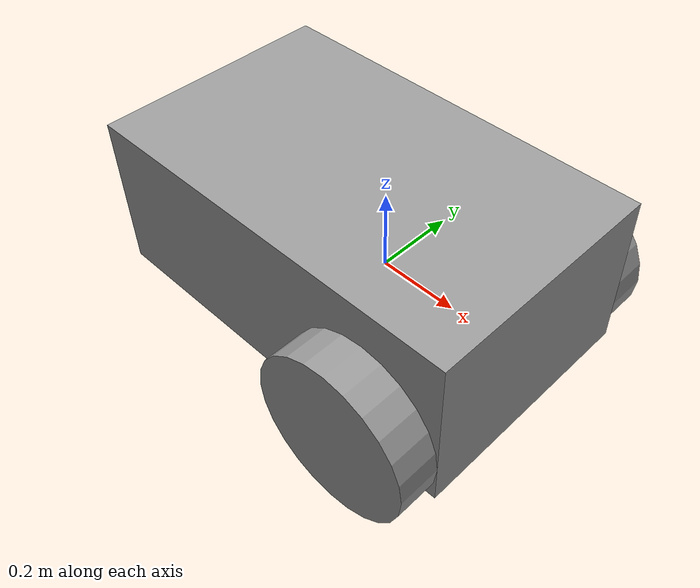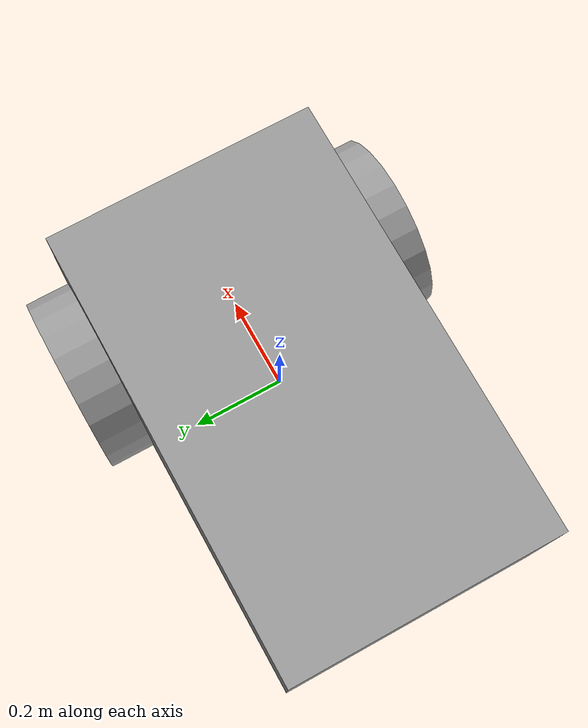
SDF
<?xml version='1.0'?>
<sdf version='1.7'>
  <model name='MobileRobotv2'>
    <link name='link_0'>
      <inertial>
        <mass>282</mass>
        <inertia>
          <ixx>12.22</ixx>
          <ixy>0</ixy>
          <ixz>0</ixz>
          <iyy>27.26</iyy>
          <iyz>0</iyz>
          <izz>31.96</izz>
        </inertia>
        <pose>0 0 0 0 -0 0</pose>
      </inertial>
      <pose>-0.075 0 0.049972 0 -0 0</pose>
      <gravity>1</gravity>
      <self_collide>0</self_collide>
      <kinematic>0</kinematic>
      <enable_wind>0</enable_wind>
      <visual name='visual'>
        <pose>0 0 0 0 -0 0</pose>
        <geometry>
          <box>
            <size>1 0.6 0.4</size>
          </box>
        </geometry>
        <material>
          <lighting>1</lighting>
          <script>
            <uri>file://media/materials/scripts/gazebo.material</uri>
            <name>Gazebo/Grey</name>
          </script>
          <shader type='pixel'>
            <normal_map>__default__</normal_map>
          </shader>
          <ambient>0.3 0.3 0.3 1</ambient>
          <diffuse>0.7 0.7 0.7 1</diffuse>
          <specular>0.01 0.01 0.01 1</specular>
          <emissive>0 0 0 1</emissive>
        </material>
        <transparency>0</transparency>
        <cast_shadows>1</cast_shadows>
      </visual>
      <collision name='collision'>
        <laser_retro>0</laser_retro>
        <max_contacts>10</max_contacts>
        <pose>0 0 0 0 -0 0</pose>
        <geometry>
          <box>
            <size>1 0.6 0.4</size>
          </box>
        </geometry>
        <surface>
          <friction>
            <ode>
              <mu>1</mu>
              <mu2>1</mu2>
              <fdir1>0 0 0</fdir1>
              <slip1>0</slip1>
              <slip2>0</slip2>
            </ode>
            <torsional>
              <coefficient>1</coefficient>
              <patch_radius>0</patch_radius>
              <surface_radius>0</surface_radius>
              <use_patch_radius>1</use_patch_radius>
              <ode>
                <slip>0</slip>
              </ode>
            </torsional>
          </friction>
          <bounce>
            <restitution_coefficient>0</restitution_coefficient>
            <threshold>1e+06</threshold>
          </bounce>
          <contact>
            <collide_without_contact>0</collide_without_contact>
            <collide_without_contact_bitmask>1</collide_without_contact_bitmask>
            <collide_bitmask>1</collide_bitmask>
            <ode>
              <soft_cfm>0</soft_cfm>
              <soft_erp>0.2</soft_erp>
              <kp>1e+13</kp>
              <kd>1</kd>
              <max_vel>0.01</max_vel>
              <min_depth>0</min_depth>
            </ode>
            <bullet>
              <split_impulse>1</split_impulse>
              <split_impulse_penetration_threshold>-0.01</split_impulse_penetration_threshold>
              <soft_cfm>0</soft_cfm>
              <soft_erp>0.2</soft_erp>
              <kp>1e+13</kp>
              <kd>1</kd>
            </bullet>
          </contact>
        </surface>
      </collision>
    </link>
    <link name='link_1'>
      <inertial>
        <mass>14.7655</mass>
        <inertia>
          <ixx>0.159959</ixx>
          <ixy>0</ixy>
          <ixz>0</ixz>
          <iyy>0.159959</iyy>
          <iyz>0</iyz>
          <izz>0.29531</izz>
        </inertia>
        <pose>0 0 0 0 -0 0</pose>
      </inertial>
      <pose>0.225 -0.350019 -0.050028 1.5707 -0 0</pose>
      <gravity>1</gravity>
      <self_collide>0</self_collide>
      <kinematic>0</kinematic>
      <enable_wind>0</enable_wind>
      <visual name='visual'>
        <pose>0 0 0 0 -0 0</pose>
        <geometry>
          <cylinder>
            <radius>0.2</radius>
            <length>0.1</length>
          </cylinder>
        </geometry>
        <material>
          <lighting>1</lighting>
          <script>
            <uri>file://media/materials/scripts/gazebo.material</uri>
            <name>Gazebo/Grey</name>
          </script>
          <shader type='pixel'>
            <normal_map>__default__</normal_map>
          </shader>
          <ambient>0.3 0.3 0.3 1</ambient>
          <diffuse>0.7 0.7 0.7 1</diffuse>
          <specular>0.01 0.01 0.01 1</specular>
          <emissive>0 0 0 1</emissive>
        </material>
        <transparency>0</transparency>
        <cast_shadows>1</cast_shadows>
      </visual>
      <collision name='collision'>
        <laser_retro>0</laser_retro>
        <max_contacts>10</max_contacts>
        <pose>0 0 0 0 -0 0</pose>
        <geometry>
          <cylinder>
            <radius>0.2</radius>
            <length>0.1</length>
          </cylinder>
        </geometry>
        <surface>
          <friction>
            <ode>
              <mu>1</mu>
              <mu2>1</mu2>
              <fdir1>0 0 0</fdir1>
              <slip1>0</slip1>
              <slip2>0</slip2>
            </ode>
            <torsional>
              <coefficient>1</coefficient>
              <patch_radius>0</patch_radius>
              <surface_radius>0</surface_radius>
              <use_patch_radius>1</use_patch_radius>
              <ode>
                <slip>0</slip>
              </ode>
            </torsional>
          </friction>
          <bounce>
            <restitution_coefficient>0</restitution_coefficient>
            <threshold>1e+06</threshold>
          </bounce>
          <contact>
            <collide_without_contact>0</collide_without_contact>
            <collide_without_contact_bitmask>1</collide_without_contact_bitmask>
            <collide_bitmask>1</collide_bitmask>
            <ode>
              <soft_cfm>0</soft_cfm>
              <soft_erp>0.2</soft_erp>
              <kp>1e+13</kp>
              <kd>1</kd>
              <max_vel>0.01</max_vel>
              <min_depth>0</min_depth>
            </ode>
            <bullet>
              <split_impulse>1</split_impulse>
              <split_impulse_penetration_threshold>-0.01</split_impulse_penetration_threshold>
              <soft_cfm>0</soft_cfm>
              <soft_erp>0.2</soft_erp>
              <kp>1e+13</kp>
              <kd>1</kd>
            </bullet>
          </contact>
        </surface>
      </collision>
    </link>
    <link name='link_1_clone'>
      <inertial>
        <mass>14.7655</mass>
        <inertia>
          <ixx>0.159959</ixx>
          <ixy>0</ixy>
          <ixz>0</ixz>
          <iyy>0.159959</iyy>
          <iyz>0</iyz>
          <izz>0.29531</izz>
        </inertia>
        <pose>0 0 0 0 -0 0</pose>
      </inertial>
      <pose>0.225 0.350019 -0.050028 1.5707 -0 0</pose>
      <gravity>1</gravity>
      <self_collide>0</self_collide>
      <kinematic>0</kinematic>
      <enable_wind>0</enable_wind>
      <visual name='visual'>
        <pose>0 0 0 0 -0 0</pose>
        <geometry>
          <cylinder>
            <radius>0.2</radius>
            <length>0.1</length>
          </cylinder>
        </geometry>
        <material>
          <lighting>1</lighting>
          <script>
            <uri>file://media/materials/scripts/gazebo.material</uri>
            <name>Gazebo/Grey</name>
          </script>
          <shader type='pixel'>
            <normal_map>__default__</normal_map>
          </shader>
          <ambient>0.3 0.3 0.3 1</ambient>
          <diffuse>0.7 0.7 0.7 1</diffuse>
          <specular>0.01 0.01 0.01 1</specular>
          <emissive>0 0 0 1</emissive>
        </material>
        <transparency>0</transparency>
        <cast_shadows>1</cast_shadows>
      </visual>
      <collision name='collision'>
        <laser_retro>0</laser_retro>
        <max_contacts>10</max_contacts>
        <pose>0 0 0 0 -0 0</pose>
        <geometry>
          <cylinder>
            <radius>0.2</radius>
            <length>0.1</length>
          </cylinder>
        </geometry>
        <surface>
          <friction>
            <ode>
              <mu>1</mu>
              <mu2>1</mu2>
              <fdir1>0 0 0</fdir1>
              <slip1>0</slip1>
              <slip2>0</slip2>
            </ode>
            <torsional>
              <coefficient>1</coefficient>
              <patch_radius>0</patch_radius>
              <surface_radius>0</surface_radius>
              <use_patch_radius>1</use_patch_radius>
              <ode>
                <slip>0</slip>
              </ode>
            </torsional>
          </friction>
          <bounce>
            <restitution_coefficient>0</restitution_coefficient>
            <threshold>1e+06</threshold>
          </bounce>
          <contact>
            <collide_without_contact>0</collide_without_contact>
            <collide_without_contact_bitmask>1</collide_without_contact_bitmask>
            <collide_bitmask>1</collide_bitmask>
            <ode>
              <soft_cfm>0</soft_cfm>
              <soft_erp>0.2</soft_erp>
              <kp>1e+13</kp>
              <kd>1</kd>
              <max_vel>0.01</max_vel>
              <min_depth>0</min_depth>
            </ode>
            <bullet>
              <split_impulse>1</split_impulse>
              <split_impulse_penetration_threshold>-0.01</split_impulse_penetration_threshold>
              <soft_cfm>0</soft_cfm>
              <soft_erp>0.2</soft_erp>
              <kp>1e+13</kp>
              <kd>1</kd>
            </bullet>
          </contact>
        </surface>
      </collision>
    </link>
    <link name='link_2'>
      <inertial>
        <mass>615.229</mass>
        <inertia>
          <ixx>61.5229</ixx>
          <ixy>0</ixy>
          <ixz>0</ixz>
          <iyy>61.5229</iyy>
          <iyz>0</iyz>
          <izz>61.5229</izz>
        </inertia>
        <pose>0 0 0 0 -0 0</pose>
      </inertial>
      <pose>-0.375 0 -0.050028 0 -0 0</pose>
      <gravity>1</gravity>
      <self_collide>0</self_collide>
      <kinematic>0</kinematic>
      <enable_wind>0</enable_wind>
      <visual name='visual'>
        <pose>0 0 0 0 -0 0</pose>
        <geometry>
          <sphere>
            <radius>0.2</radius>
          </sphere>
        </geometry>
        <material>
          <lighting>1</lighting>
          <script>
            <uri>file://media/materials/scripts/gazebo.material</uri>
            <name>Gazebo/Grey</name>
          </script>
          <shader type='pixel'>
            <normal_map>__default__</normal_map>
          </shader>
          <ambient>0.3 0.3 0.3 1</ambient>
          <diffuse>0.7 0.7 0.7 1</diffuse>
          <specular>0.01 0.01 0.01 1</specular>
          <emissive>0 0 0 1</emissive>
        </material>
        <transparency>0</transparency>
        <cast_shadows>1</cast_shadows>
      </visual>
      <collision name='collision'>
        <laser_retro>0</laser_retro>
        <max_contacts>10</max_contacts>
        <pose>0 0 0 0 -0 0</pose>
        <geometry>
          <sphere>
            <radius>0.2</radius>
          </sphere>
        </geometry>
        <surface>
          <friction>
            <ode>
              <mu>1</mu>
              <mu2>1</mu2>
              <fdir1>0 0 0</fdir1>
              <slip1>0</slip1>
              <slip2>0</slip2>
            </ode>
            <torsional>
              <coefficient>1</coefficient>
              <patch_radius>0</patch_radius>
              <surface_radius>0</surface_radius>
              <use_patch_radius>1</use_patch_radius>
              <ode>
                <slip>0</slip>
              </ode>
            </torsional>
          </friction>
          <bounce>
            <restitution_coefficient>0</restitution_coefficient>
            <threshold>1e+06</threshold>
          </bounce>
          <contact>
            <collide_without_contact>0</collide_without_contact>
            <collide_without_contact_bitmask>1</collide_without_contact_bitmask>
            <collide_bitmask>1</collide_bitmask>
            <ode>
              <soft_cfm>0</soft_cfm>
              <soft_erp>0.2</soft_erp>
              <kp>1e+13</kp>
              <kd>1</kd>
              <max_vel>0.01</max_vel>
              <min_depth>0</min_depth>
            </ode>
            <bullet>
              <split_impulse>1</split_impulse>
              <split_impulse_penetration_threshold>-0.01</split_impulse_penetration_threshold>
              <soft_cfm>0</soft_cfm>
              <soft_erp>0.2</soft_erp>
              <kp>1e+13</kp>
              <kd>1</kd>
            </bullet>
          </contact>
        </surface>
      </collision>
    </link>
    <joint name='link_0_JOINT_0' type='revolute'>
      <parent>link_0</parent>
      <child>link_1</child>
      <pose>0 0 0 0 -0 0</pose>
      <axis>
        <xyz>0 0 -1</xyz>
        <limit>
          <lower>-1.79769e+308</lower>
          <upper>1.79769e+308</upper>
          <effort>-1</effort>
          <velocity>-1</velocity>
        </limit>
        <dynamics>
          <spring_reference>0</spring_reference>
          <spring_stiffness>0</spring_stiffness>
          <damping>0</damping>
          <friction>0</friction>
        </dynamics>
      </axis>
      <physics>
        <ode>
          <limit>
            <cfm>0</cfm>
            <erp>0.2</erp>
          </limit>
          <suspension>
            <cfm>0</cfm>
            <erp>0.2</erp>
          </suspension>
        </ode>
      </physics>
    </joint>
    <joint name='link_0_JOINT_1' type='revolute'>
      <parent>link_0</parent>
      <child>link_1_clone</child>
      <pose>0 0 0 0 -0 0</pose>
      <axis>
        <xyz>0 0 1</xyz>
        <limit>
          <lower>-1.79769e+308</lower>
          <upper>1.79769e+308</upper>
          <effort>-1</effort>
          <velocity>-1</velocity>
        </limit>
        <dynamics>
          <spring_reference>0</spring_reference>
          <spring_stiffness>0</spring_stiffness>
          <damping>0</damping>
        </dynamics>
      </axis>
      <physics>
        <ode>
          <limit>
            <cfm>0</cfm>
            <erp>0.2</erp>
          </limit>
          <suspension>
            <cfm>0</cfm>
            <erp>0.2</erp>
          </suspension>
        </ode>
      </physics>
    </joint>
    <joint name='link_0_JOINT_2' type='ball'>
      <parent>link_0</parent>
      <child>link_2</child>
      <pose>0 0 0 0 -0 0</pose>
      <physics>
        <ode>
          <limit>
            <cfm>0</cfm>
            <erp>0.2</erp>
          </limit>
          <suspension>
            <cfm>0</cfm>
            <erp>0.2</erp>
          </suspension>
        </ode>
      </physics>
    </joint>
    <static>0</static>
    <allow_auto_disable>1</allow_auto_disable>
  </model>
</sdf>
